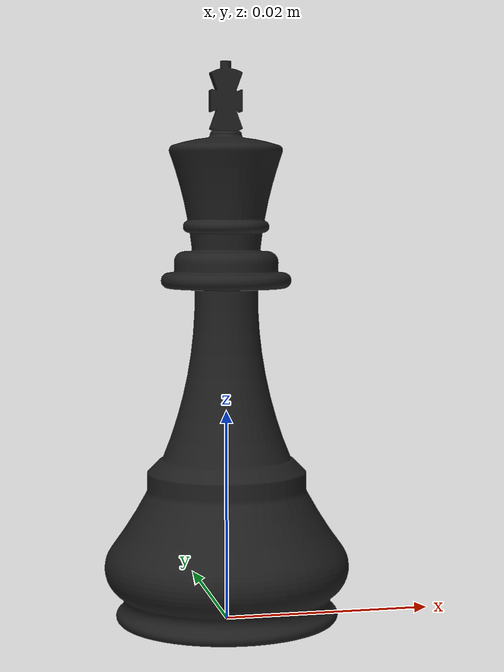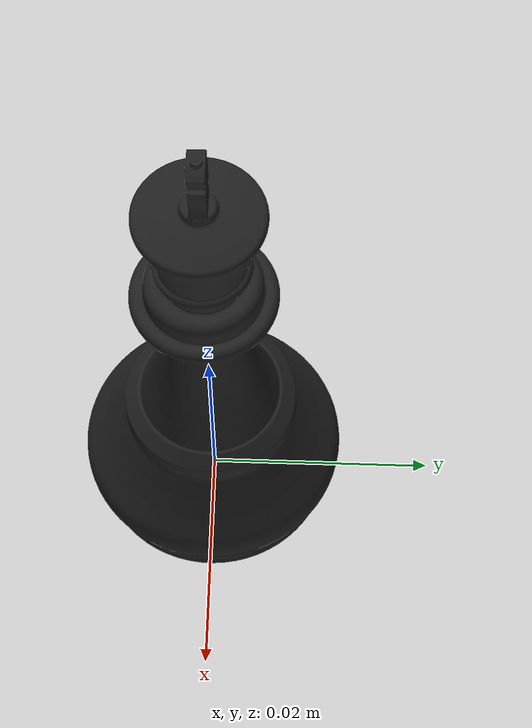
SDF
<?xml version="1.0" encoding="UTF-8"?>
<sdf version="1.6">
    <model name="knightb">
        <link name="piece">
            <inertial>
                <mass>0.001</mass>
                <inertia>
                    <ixx>0.0000001667</ixx>
                    <ixy>0</ixy>
                    <ixz>0</ixz>
                    <iyy>0.0000000667</iyy>
                    <iyz>0</iyz>
                    <izz>0.0000001667</izz>
                </inertia>
            </inertial>
            <collision name="collision">
                <geometry>
                    <box>
                        <size>0.03 0.03 0.04</size>
                    </box>
                </geometry>
                <surface>
                    <friction>
                        <ode>
                            <mu>0.4</mu>
                            <mu2>0.4</mu2>
                        </ode>
                    </friction>
                    <contact>
                        <ode>
                            <max_vel>0.1</max_vel>
                            <min_depth>0.0001</min_depth>
                        </ode>
                    </contact>
                </surface>
            </collision>
            <visual name="visual">
                <geometry>
                    <mesh>
                        <uri>/home/vagrant/RF_Project/src/baxter_chess_game/models/pieces/Knight.dae</uri>
                        <scale>1 1 1</scale>
                    </mesh>
                </geometry>
                <material>
                    <script>
                        <uri>file://media/materials/scripts/gazebo.material</uri>
                        <name>Gazebo/FlatBlack</name>
                    </script>
                </material>
            </visual>
        </link>
    </model>
</sdf>
